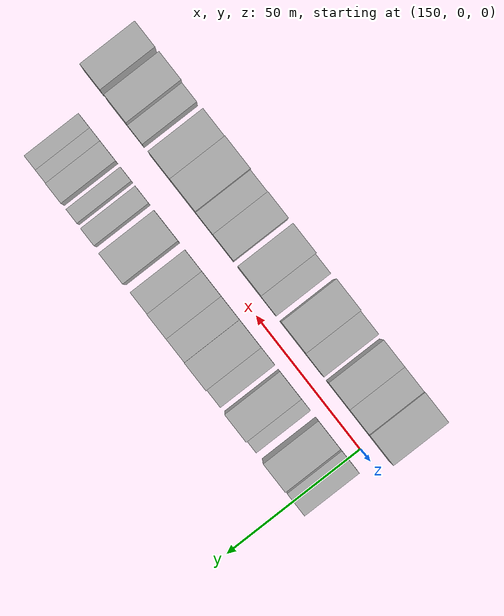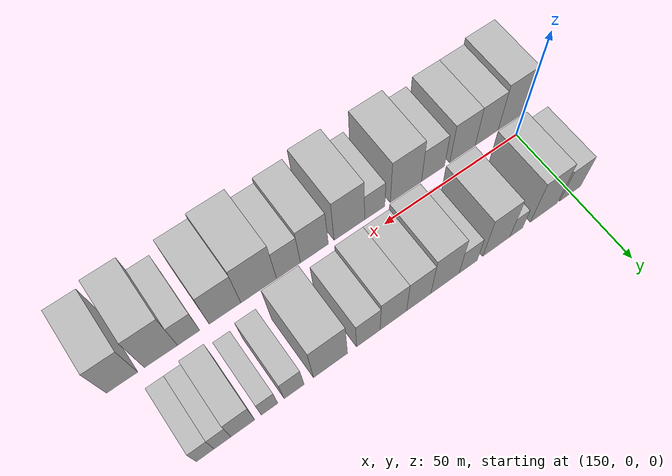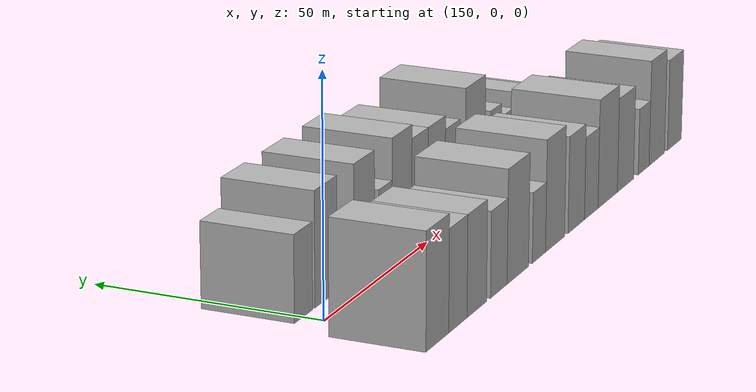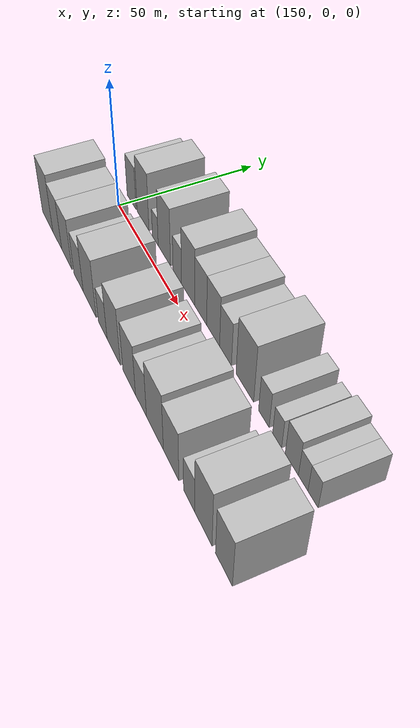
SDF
<sdf version="1.6">
 <world name="default">
  <model name="building_15">
   <static>1</static>
   <pose>150.3794 14.5000 0 0.000000 0.000000 1.570796</pose>
   <link name="link">
    <pose>0 0 9.00 0 0 0</pose>
    <collision name="collision"><geometry><box><size>20.0000 8.1824 18.0000</size></box></geometry></collision>
    <visual name="visual">
     <cast_shadows>0</cast_shadows>
     <geometry><box><size>20.0000 8.1824 18.0000</size></box></geometry>
     <material>
      <script>
       <uri>model://HANNAS_wall/materials/scripts</uri>
       <uri>model://HANNAS_wall/materials/textures</uri>
       <name>vrc/HANNAS_wall</name>
      </script>
     </material>
    </visual>
   </link>
  </model>
  <model name="building_16">
   <static>1</static>
   <pose>160.6285 14.5000 0 0.000000 0.000000 1.570796</pose>
   <link name="link">
    <pose>0 0 12.00 0 0 0</pose>
    <collision name="collision"><geometry><box><size>20.0000 10.3158 24.0000</size></box></geometry></collision>
    <visual name="visual">
     <cast_shadows>0</cast_shadows>
     <geometry><box><size>20.0000 10.3158 24.0000</size></box></geometry>
     <material>
      <script>
       <uri>model://HANNAS_wall/materials/scripts</uri>
       <uri>model://HANNAS_wall/materials/textures</uri>
       <name>vrc/HANNAS_wall</name>
      </script>
     </material>
    </visual>
   </link>
  </model>
  <model name="building_17">
   <static>1</static>
   <pose>171.1997 14.5000 0 0.000000 0.000000 1.570796</pose>
   <link name="link">
    <pose>0 0 6.00 0 0 0</pose>
    <collision name="collision"><geometry><box><size>20.0000 4.8267 12.0000</size></box></geometry></collision>
    <visual name="visual">
     <cast_shadows>0</cast_shadows>
     <geometry><box><size>20.0000 4.8267 12.0000</size></box></geometry>
     <material>
      <script>
       <uri>model://HANNAS_wall/materials/scripts</uri>
       <uri>model://HANNAS_wall/materials/textures</uri>
       <name>vrc/HANNAS_wall</name>
      </script>
     </material>
    </visual>
   </link>
  </model>
  <model name="building_18">
   <static>1</static>
   <pose>178.6319 14.5000 0 0.000000 0.000000 1.570796</pose>
   <link name="link">
    <pose>0 0 12.00 0 0 0</pose>
    <collision name="collision"><geometry><box><size>20.0000 10.0376 24.0000</size></box></geometry></collision>
    <visual name="visual">
     <cast_shadows>0</cast_shadows>
     <geometry><box><size>20.0000 10.0376 24.0000</size></box></geometry>
     <material>
      <script>
       <uri>model://HANNAS_wall/materials/scripts</uri>
       <uri>model://HANNAS_wall/materials/textures</uri>
       <name>vrc/HANNAS_wall</name>
      </script>
     </material>
    </visual>
   </link>
  </model>
  <model name="building_19">
   <static>1</static>
   <pose>188.9557 14.5000 0 0.000000 0.000000 1.570796</pose>
   <link name="link">
    <pose>0 0 7.50 0 0 0</pose>
    <collision name="collision"><geometry><box><size>20.0000 6.6099 15.0000</size></box></geometry></collision>
    <visual name="visual">
     <cast_shadows>0</cast_shadows>
     <geometry><box><size>20.0000 6.6099 15.0000</size></box></geometry>
     <material>
      <script>
       <uri>model://HANNAS_wall/materials/scripts</uri>
       <uri>model://HANNAS_wall/materials/textures</uri>
       <name>vrc/HANNAS_wall</name>
      </script>
     </material>
    </visual>
   </link>
  </model>
  <model name="building_20">
   <static>1</static>
   <pose>197.2982 14.5000 0 0.000000 0.000000 1.570796</pose>
   <link name="link">
    <pose>0 0 12.00 0 0 0</pose>
    <collision name="collision"><geometry><box><size>20.0000 10.0751 24.0000</size></box></geometry></collision>
    <visual name="visual">
     <cast_shadows>0</cast_shadows>
     <geometry><box><size>20.0000 10.0751 24.0000</size></box></geometry>
     <material>
      <script>
       <uri>model://HANNAS_wall/materials/scripts</uri>
       <uri>model://HANNAS_wall/materials/textures</uri>
       <name>vrc/HANNAS_wall</name>
      </script>
     </material>
    </visual>
   </link>
  </model>
  <model name="building_21">
   <static>1</static>
   <pose>206.5901 14.5000 0 0.000000 0.000000 1.570796</pose>
   <link name="link">
    <pose>0 0 10.50 0 0 0</pose>
    <collision name="collision"><geometry><box><size>20.0000 8.5087 21.0000</size></box></geometry></collision>
    <visual name="visual">
     <cast_shadows>0</cast_shadows>
     <geometry><box><size>20.0000 8.5087 21.0000</size></box></geometry>
     <material>
      <script>
       <uri>model://HANNAS_wall/materials/scripts</uri>
       <uri>model://HANNAS_wall/materials/textures</uri>
       <name>vrc/HANNAS_wall</name>
      </script>
     </material>
    </visual>
   </link>
  </model>
  <model name="building_22">
   <static>1</static>
   <pose>215.3649 14.5000 0 0.000000 0.000000 1.570796</pose>
   <link name="link">
    <pose>0 0 10.50 0 0 0</pose>
    <collision name="collision"><geometry><box><size>20.0000 9.0410 21.0000</size></box></geometry></collision>
    <visual name="visual">
     <cast_shadows>0</cast_shadows>
     <geometry><box><size>20.0000 9.0410 21.0000</size></box></geometry>
     <material>
      <script>
       <uri>model://HANNAS_wall/materials/scripts</uri>
       <uri>model://HANNAS_wall/materials/textures</uri>
       <name>vrc/HANNAS_wall</name>
      </script>
     </material>
    </visual>
   </link>
  </model>
  <model name="building_23">
   <static>1</static>
   <pose>223.8571 14.5000 0 0.000000 0.000000 1.570796</pose>
   <link name="link">
    <pose>0 0 9.00 0 0 0</pose>
    <collision name="collision"><geometry><box><size>20.0000 7.9435 18.0000</size></box></geometry></collision>
    <visual name="visual">
     <cast_shadows>0</cast_shadows>
     <geometry><box><size>20.0000 7.9435 18.0000</size></box></geometry>
     <material>
      <script>
       <uri>model://HANNAS_wall/materials/scripts</uri>
       <uri>model://HANNAS_wall/materials/textures</uri>
       <name>vrc/HANNAS_wall</name>
      </script>
     </material>
    </visual>
   </link>
  </model>
  <model name="building_24">
   <static>1</static>
   <pose>236.3933 14.5000 0 0.000000 0.000000 1.570796</pose>
   <link name="link">
    <pose>0 0 12.00 0 0 0</pose>
    <collision name="collision"><geometry><box><size>20.0000 11.1290 24.0000</size></box></geometry></collision>
    <visual name="visual">
     <cast_shadows>0</cast_shadows>
     <geometry><box><size>20.0000 11.1290 24.0000</size></box></geometry>
     <material>
      <script>
       <uri>model://HANNAS_wall/materials/scripts</uri>
       <uri>model://HANNAS_wall/materials/textures</uri>
       <name>vrc/HANNAS_wall</name>
      </script>
     </material>
    </visual>
   </link>
  </model>
  <model name="building_25">
   <static>1</static>
   <pose>248.1304 14.5000 0 0.000000 0.000000 1.570796</pose>
   <link name="link">
    <pose>0 0 7.50 0 0 0</pose>
    <collision name="collision"><geometry><box><size>20.0000 6.3451 15.0000</size></box></geometry></collision>
    <visual name="visual">
     <cast_shadows>0</cast_shadows>
     <geometry><box><size>20.0000 6.3451 15.0000</size></box></geometry>
     <material>
      <script>
       <uri>model://HANNAS_wall/materials/scripts</uri>
       <uri>model://HANNAS_wall/materials/textures</uri>
       <name>vrc/HANNAS_wall</name>
      </script>
     </material>
    </visual>
   </link>
  </model>
  <model name="building_26">
   <static>1</static>
   <pose>255.8941 14.5000 0 0.000000 0.000000 1.570796</pose>
   <link name="link">
    <pose>0 0 6.00 0 0 0</pose>
    <collision name="collision"><geometry><box><size>20.0000 5.1823 12.0000</size></box></geometry></collision>
    <visual name="visual">
     <cast_shadows>0</cast_shadows>
     <geometry><box><size>20.0000 5.1823 12.0000</size></box></geometry>
     <material>
      <script>
       <uri>model://HANNAS_wall/materials/scripts</uri>
       <uri>model://HANNAS_wall/materials/textures</uri>
       <name>vrc/HANNAS_wall</name>
      </script>
     </material>
    </visual>
   </link>
  </model>
  <model name="building_27">
   <static>1</static>
   <pose>264.1431 14.5000 0 0.000000 0.000000 1.570796</pose>
   <link name="link">
    <pose>0 0 7.50 0 0 0</pose>
    <collision name="collision"><geometry><box><size>20.0000 7.3158 15.0000</size></box></geometry></collision>
    <visual name="visual">
     <cast_shadows>0</cast_shadows>
     <geometry><box><size>20.0000 7.3158 15.0000</size></box></geometry>
     <material>
      <script>
       <uri>model://HANNAS_wall/materials/scripts</uri>
       <uri>model://HANNAS_wall/materials/textures</uri>
       <name>vrc/HANNAS_wall</name>
      </script>
     </material>
    </visual>
   </link>
  </model>
  <model name="building_28">
   <static>1</static>
   <pose>270.3426 14.5000 0 0.000000 0.000000 1.570796</pose>
   <link name="link">
    <pose>0 0 6.00 0 0 0</pose>
    <collision name="collision"><geometry><box><size>20.0000 5.0831 12.0000</size></box></geometry></collision>
    <visual name="visual">
     <cast_shadows>0</cast_shadows>
     <geometry><box><size>20.0000 5.0831 12.0000</size></box></geometry>
     <material>
      <script>
       <uri>model://HANNAS_wall/materials/scripts</uri>
       <uri>model://HANNAS_wall/materials/textures</uri>
       <name>vrc/HANNAS_wall</name>
      </script>
     </material>
    </visual>
   </link>
  </model>
  <model name="building_29">
   <static>1</static>
   <pose>275.5428 14.5000 0 0.000000 0.000000 1.570796</pose>
   <link name="link">
    <pose>0 0 6.00 0 0 0</pose>
    <collision name="collision"><geometry><box><size>20.0000 5.3172 12.0000</size></box></geometry></collision>
    <visual name="visual">
     <cast_shadows>0</cast_shadows>
     <geometry><box><size>20.0000 5.3172 12.0000</size></box></geometry>
     <material>
      <script>
       <uri>model://HANNAS_wall/materials/scripts</uri>
       <uri>model://HANNAS_wall/materials/textures</uri>
       <name>vrc/HANNAS_wall</name>
      </script>
     </material>
    </visual>
   </link>
  </model>
  <model name="building_42">
   <static>1</static>
   <pose>148.0106 -14.5000 0 0.000000 0.000000 1.570796</pose>
   <link name="link">
    <pose>0 0 12.00 0 0 0</pose>
    <collision name="collision"><geometry><box><size>20.0000 10.9434 24.0000</size></box></geometry></collision>
    <visual name="visual">
     <cast_shadows>0</cast_shadows>
     <geometry><box><size>20.0000 10.9434 24.0000</size></box></geometry>
     <material>
      <script>
       <uri>model://HANNAS_wall/materials/scripts</uri>
       <uri>model://HANNAS_wall/materials/textures</uri>
       <name>vrc/HANNAS_wall</name>
      </script>
     </material>
    </visual>
   </link>
  </model>
  <model name="building_43">
   <static>1</static>
   <pose>158.0014 -14.5000 0 0.000000 0.000000 1.570796</pose>
   <link name="link">
    <pose>0 0 10.50 0 0 0</pose>
    <collision name="collision"><geometry><box><size>20.0000 9.0382 21.0000</size></box></geometry></collision>
    <visual name="visual">
     <cast_shadows>0</cast_shadows>
     <geometry><box><size>20.0000 9.0382 21.0000</size></box></geometry>
     <material>
      <script>
       <uri>model://HANNAS_wall/materials/scripts</uri>
       <uri>model://HANNAS_wall/materials/textures</uri>
       <name>vrc/HANNAS_wall</name>
      </script>
     </material>
    </visual>
   </link>
  </model>
  <model name="building_44">
   <static>1</static>
   <pose>167.4317 -14.5000 0 0.000000 0.000000 1.570796</pose>
   <link name="link">
    <pose>0 0 10.50 0 0 0</pose>
    <collision name="collision"><geometry><box><size>20.0000 9.8224 21.0000</size></box></geometry></collision>
    <visual name="visual">
     <cast_shadows>0</cast_shadows>
     <geometry><box><size>20.0000 9.8224 21.0000</size></box></geometry>
     <material>
      <script>
       <uri>model://HANNAS_wall/materials/scripts</uri>
       <uri>model://HANNAS_wall/materials/textures</uri>
       <name>vrc/HANNAS_wall</name>
      </script>
     </material>
    </visual>
   </link>
  </model>
  <model name="building_45">
   <static>1</static>
   <pose>178.7008 -14.5000 0 0.000000 0.000000 1.570796</pose>
   <link name="link">
    <pose>0 0 9.00 0 0 0</pose>
    <collision name="collision"><geometry><box><size>20.0000 8.7158 18.0000</size></box></geometry></collision>
    <visual name="visual">
     <cast_shadows>0</cast_shadows>
     <geometry><box><size>20.0000 8.7158 18.0000</size></box></geometry>
     <material>
      <script>
       <uri>model://HANNAS_wall/materials/scripts</uri>
       <uri>model://HANNAS_wall/materials/textures</uri>
       <name>vrc/HANNAS_wall</name>
      </script>
     </material>
    </visual>
   </link>
  </model>
  <model name="building_46">
   <static>1</static>
   <pose>188.8040 -14.5000 0 0.000000 0.000000 1.570796</pose>
   <link name="link">
    <pose>0 0 12.00 0 0 0</pose>
    <collision name="collision"><geometry><box><size>20.0000 11.4906 24.0000</size></box></geometry></collision>
    <visual name="visual">
     <cast_shadows>0</cast_shadows>
     <geometry><box><size>20.0000 11.4906 24.0000</size></box></geometry>
     <material>
      <script>
       <uri>model://HANNAS_wall/materials/scripts</uri>
       <uri>model://HANNAS_wall/materials/textures</uri>
       <name>vrc/HANNAS_wall</name>
      </script>
     </material>
    </visual>
   </link>
  </model>
  <model name="building_47">
   <static>1</static>
   <pose>200.1975 -14.5000 0 0.000000 0.000000 1.570796</pose>
   <link name="link">
    <pose>0 0 7.50 0 0 0</pose>
    <collision name="collision"><geometry><box><size>20.0000 7.2964 15.0000</size></box></geometry></collision>
    <visual name="visual">
     <cast_shadows>0</cast_shadows>
     <geometry><box><size>20.0000 7.2964 15.0000</size></box></geometry>
     <material>
      <script>
       <uri>model://HANNAS_wall/materials/scripts</uri>
       <uri>model://HANNAS_wall/materials/textures</uri>
       <name>vrc/HANNAS_wall</name>
      </script>
     </material>
    </visual>
   </link>
  </model>
  <model name="building_48">
   <static>1</static>
   <pose>209.2456 -14.5000 0 0.000000 0.000000 1.570796</pose>
   <link name="link">
    <pose>0 0 12.00 0 0 0</pose>
    <collision name="collision"><geometry><box><size>20.0000 10.7999 24.0000</size></box></geometry></collision>
    <visual name="visual">
     <cast_shadows>0</cast_shadows>
     <geometry><box><size>20.0000 10.7999 24.0000</size></box></geometry>
     <material>
      <script>
       <uri>model://HANNAS_wall/materials/scripts</uri>
       <uri>model://HANNAS_wall/materials/textures</uri>
       <name>vrc/HANNAS_wall</name>
      </script>
     </material>
    </visual>
   </link>
  </model>
  <model name="building_49">
   <static>1</static>
   <pose>221.4512 -14.5000 0 0.000000 0.000000 1.570796</pose>
   <link name="link">
    <pose>0 0 10.50 0 0 0</pose>
    <collision name="collision"><geometry><box><size>20.0000 9.6111 21.0000</size></box></geometry></collision>
    <visual name="visual">
     <cast_shadows>0</cast_shadows>
     <geometry><box><size>20.0000 9.6111 21.0000</size></box></geometry>
     <material>
      <script>
       <uri>model://HANNAS_wall/materials/scripts</uri>
       <uri>model://HANNAS_wall/materials/textures</uri>
       <name>vrc/HANNAS_wall</name>
      </script>
     </material>
    </visual>
   </link>
  </model>
  <model name="building_50">
   <static>1</static>
   <pose>230.3031 -14.5000 0 0.000000 0.000000 1.570796</pose>
   <link name="link">
    <pose>0 0 9.00 0 0 0</pose>
    <collision name="collision"><geometry><box><size>20.0000 8.0928 18.0000</size></box></geometry></collision>
    <visual name="visual">
     <cast_shadows>0</cast_shadows>
     <geometry><box><size>20.0000 8.0928 18.0000</size></box></geometry>
     <material>
      <script>
       <uri>model://HANNAS_wall/materials/scripts</uri>
       <uri>model://HANNAS_wall/materials/textures</uri>
       <name>vrc/HANNAS_wall</name>
      </script>
     </material>
    </visual>
   </link>
  </model>
  <model name="building_51">
   <static>1</static>
   <pose>240.2750 -14.5000 0 0.000000 0.000000 1.570796</pose>
   <link name="link">
    <pose>0 0 12.00 0 0 0</pose>
    <collision name="collision"><geometry><box><size>20.0000 11.8509 24.0000</size></box></geometry></collision>
    <visual name="visual">
     <cast_shadows>0</cast_shadows>
     <geometry><box><size>20.0000 11.8509 24.0000</size></box></geometry>
     <material>
      <script>
       <uri>model://HANNAS_wall/materials/scripts</uri>
       <uri>model://HANNAS_wall/materials/textures</uri>
       <name>vrc/HANNAS_wall</name>
      </script>
     </material>
    </visual>
   </link>
  </model>
  <model name="building_52">
   <static>1</static>
   <pose>251.3274 -14.5000 0 0.000000 0.000000 1.570796</pose>
   <link name="link">
    <pose>0 0 10.50 0 0 0</pose>
    <collision name="collision"><geometry><box><size>20.0000 10.2538 21.0000</size></box></geometry></collision>
    <visual name="visual">
     <cast_shadows>0</cast_shadows>
     <geometry><box><size>20.0000 10.2538 21.0000</size></box></geometry>
     <material>
      <script>
       <uri>model://HANNAS_wall/materials/scripts</uri>
       <uri>model://HANNAS_wall/materials/textures</uri>
       <name>vrc/HANNAS_wall</name>
      </script>
     </material>
    </visual>
   </link>
  </model>
  <model name="building_53">
   <static>1</static>
   <pose>262.9565 -14.5000 0 0.000000 0.000000 1.570796</pose>
   <link name="link">
    <pose>0 0 7.50 0 0 0</pose>
    <collision name="collision"><geometry><box><size>20.0000 7.0045 15.0000</size></box></geometry></collision>
    <visual name="visual">
     <cast_shadows>0</cast_shadows>
     <geometry><box><size>20.0000 7.0045 15.0000</size></box></geometry>
     <material>
      <script>
       <uri>model://HANNAS_wall/materials/scripts</uri>
       <uri>model://HANNAS_wall/materials/textures</uri>
       <name>vrc/HANNAS_wall</name>
      </script>
     </material>
    </visual>
   </link>
  </model>
  <model name="building_54">
   <static>1</static>
   <pose>271.5915 -14.5000 0 0.000000 0.000000 1.570796</pose>
   <link name="link">
    <pose>0 0 12.00 0 0 0</pose>
    <collision name="collision"><geometry><box><size>20.0000 10.2654 24.0000</size></box></geometry></collision>
    <visual name="visual">
     <cast_shadows>0</cast_shadows>
     <geometry><box><size>20.0000 10.2654 24.0000</size></box></geometry>
     <material>
      <script>
       <uri>model://HANNAS_wall/materials/scripts</uri>
       <uri>model://HANNAS_wall/materials/textures</uri>
       <name>vrc/HANNAS_wall</name>
      </script>
     </material>
    </visual>
   </link>
  </model>
  <model name="building_55">
   <static>1</static>
   <pose>283.4515 -14.5000 0 0.000000 0.000000 1.570796</pose>
   <link name="link">
    <pose>0 0 10.50 0 0 0</pose>
    <collision name="collision"><geometry><box><size>20.0000 9.4545 21.0000</size></box></geometry></collision>
    <visual name="visual">
     <cast_shadows>0</cast_shadows>
     <geometry><box><size>20.0000 9.4545 21.0000</size></box></geometry>
     <material>
      <script>
       <uri>model://HANNAS_wall/materials/scripts</uri>
       <uri>model://HANNAS_wall/materials/textures</uri>
       <name>vrc/HANNAS_wall</name>
      </script>
     </material>
    </visual>
   </link>
  </model>
 </world>
</sdf>
